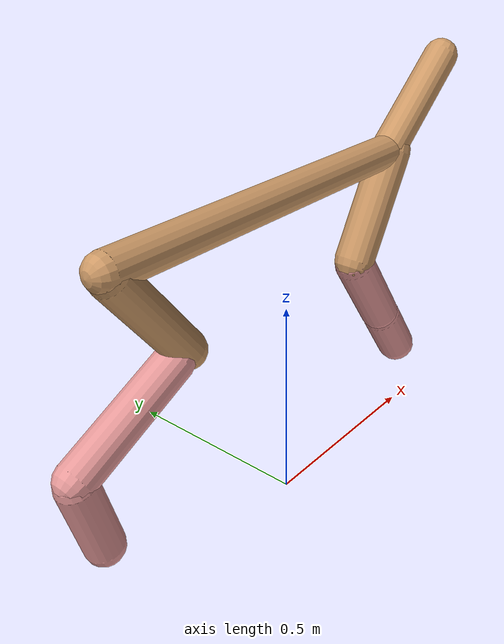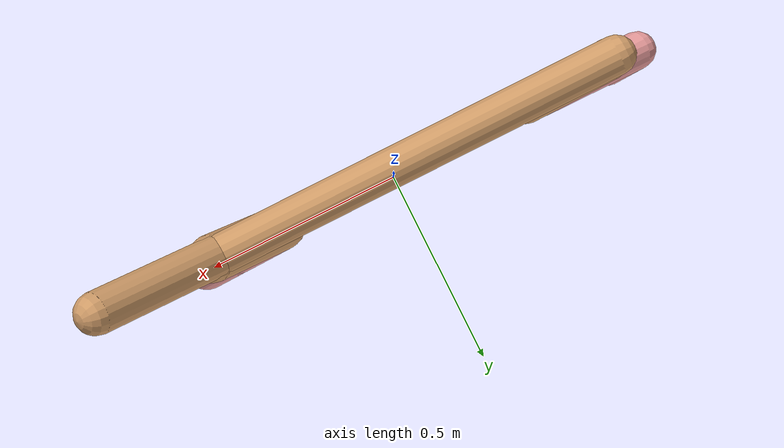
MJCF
<mujoco model="cheetah">
  <compiler angle="radian" coordinate="local" inertiafromgeom="true" settotalmass="14" />
  <default>
    <joint armature=".1" damping=".01" limited="true" solimplimit="0 .8 .03" solreflimit=".02 1" stiffness="8" />
    <geom conaffinity="0" condim="3" contype="1" friction="0.8 .1 .1" rgba="0.8 0.6 .4 1" solimp="0.0 0.8 0.01" solref="0.02 1" />
    <motor ctrllimited="true" ctrlrange="-1 1" />
  </default>
  <size nstack="300000" nuser_geom="1" />
  <option gravity="0 0 -9.81" timestep="0.01" />
  <worldbody>
    <body name="torso" pos="0.0 0.0 0.7796616459938014">
      <joint armature="0" axis="1 0 0" damping="0" limited="false" name="ignorex" pos="0 0 0" stiffness="0" type="slide" />
      <joint armature="0" axis="0 0 1" damping="0" limited="false" name="ignorez" pos="0 0 0" stiffness="0" type="slide" />
      <joint armature="0" axis="0 1 0" damping="0" limited="false" name="ignorey" pos="0 0 0" stiffness="0" type="hinge" />
      <geom fromto="-0.5 0.0 0.0 0.4172316679932188 0.0 0.0" name="torso" size="0.04151766354362129" type="capsule" />
      <geom axisangle="0 1 0 .87" name="head" pos="0.5172316679932188 0.0 0.1" size="0.043202247286288305 0.15" type="capsule" />

      <body name="bthigh" pos="-.5 0 0">
        <joint axis="0 1 0" damping="6" name="bthigh" pos="0 0 0" range="-.52 1.05" stiffness="240" type="hinge" />
        <geom axisangle="0 1 0 -3.8" name="bthigh" pos="0.09761011367999017 0.0 -0.12689314778398722" size="0.04269957155562347 0.141080294996468" type="capsule" />
        <body name="bshin" pos="0.15522022735998034 0.0 -0.24378629556797443">
          <joint axis="0 1 0" damping="4.5" name="bshin" pos="0 0 0" range="-.785 .785" stiffness="180" type="hinge" />
          <geom axisangle="0 1 0 -2.03" name="bshin" pos="-0.1363732164801475 0.0 -0.06818660824007375" rgba="0.9 0.6 0.6 1" size="0.04269957155562347 0.1459451327549669" type="capsule" />
          <body name="bfoot" pos="-0.272746432960295 0.0 -0.1363732164801475">
            <joint axis="0 1 0" damping="3" name="bfoot" pos="0 0 0" range="-.4 .785" stiffness="120" type="hinge" />
            <geom axisangle="0 1 0 -.27" name="bfoot" pos="0.029249196619137895 0.0 -0.0945724024018792" rgba="0.9 0.6 0.6 1" size="0.04269957155562347 0.09145894985977926" type="capsule" />
            <inertial mass="10" />
          </body>
        </body>
      </body>
      <body name="fthigh" pos="0.41723166799321887 0.0 0.0">
        <joint axis="0 1 0" damping="4.5" name="fthigh" pos="0 0 0" range="-1.5 0.8" stiffness="180" type="hinge" />
        <geom axisangle="0 1 0 .52" name="fthigh" pos="-0.07558421858768186 0.0 -0.12957294615031173" size="0.04978427512810382 0.14408263485060208" type="capsule" />
        <body name="fshin" pos="-0.1511684371753637 0.0 -0.25914589230062346">
          <joint axis="0 1 0" damping="3" name="fshin" pos="0 0 0" range="-1.2 1.1" stiffness="120" type="hinge" />
          <geom axisangle="0 1 0 -.6" name="fshin" pos="0.07017150729153221 0.0 -0.09716054855750612" rgba="0.9 0.6 0.6 1" size="0.04978427512810382 0.11483277664784827" type="capsule" />
          <body name="ffoot" pos="0.14034301458306442 0.0 -0.19432109711501225">
            <joint axis="0 1 0" damping="1.5" name="ffoot" pos="0 0 0" range="-3.1 -0.3" stiffness="60" type="hinge" />
            <geom axisangle="0 1 0 -.6" name="ffoot" pos="0.0481542204880098 0.0 -0.07490656520357081" rgba="0.9 0.6 0.6 1" size="0.04978427512810382 0.0758329657108432" type="capsule" />
            <inertial mass="10" />
          </body>
        </body>
      </body>
    </body>
  </worldbody>
  <actuator>
    <motor gear="120" joint="bthigh" name="bthigh" />
    <motor gear="90" joint="bshin" name="bshin" />
    <motor gear="60" joint="bfoot" name="bfoot" />
    <motor gear="120" joint="fthigh" name="fthigh" />
    <motor gear="60" joint="fshin" name="fshin" />
    <motor gear="30" joint="ffoot" name="ffoot" />
  </actuator>
</mujoco>
